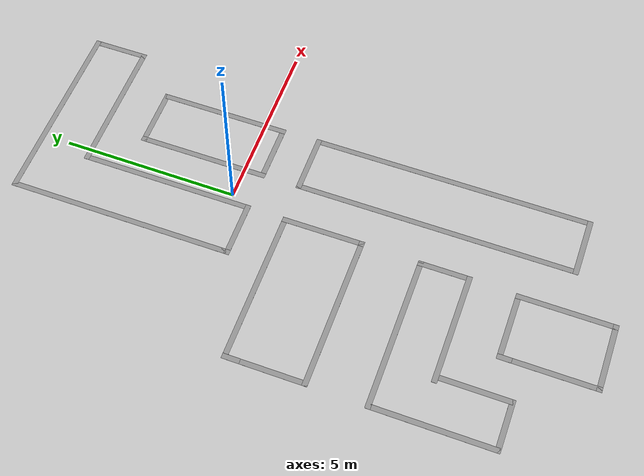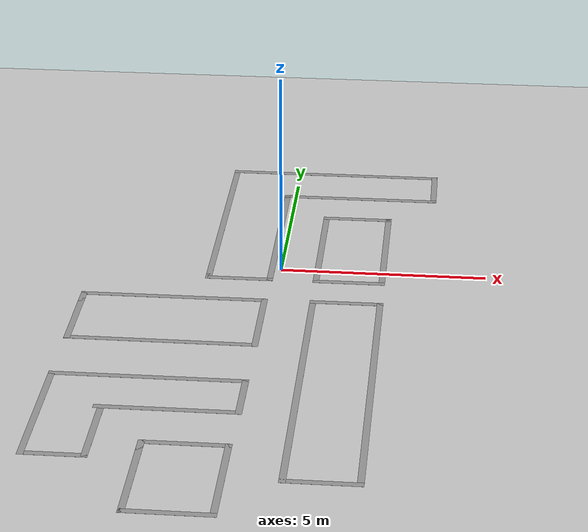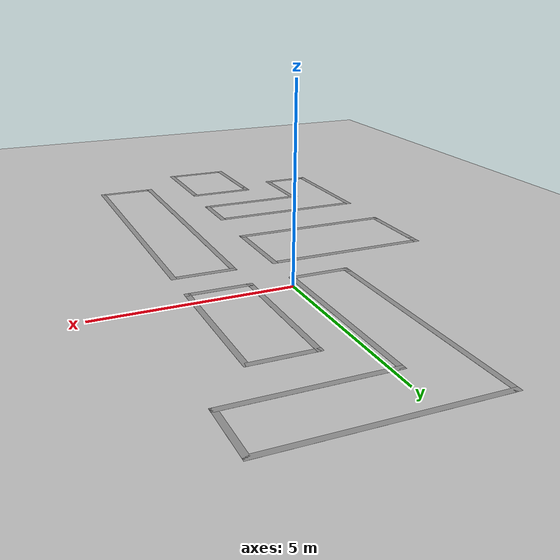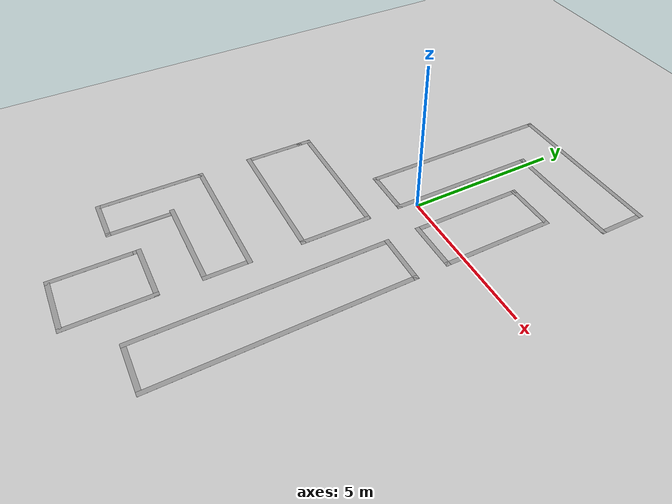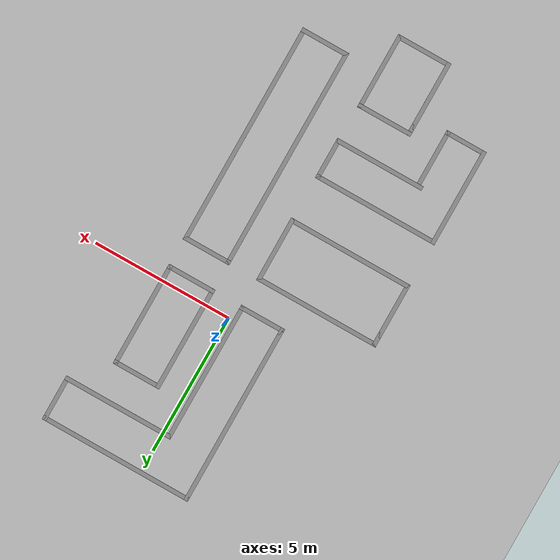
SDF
<sdf version="1.6">
 <world name="default">
  <model name="ground_plane">
   <static>1</static>
   <link name="link">
    <collision name="collision">
     <geometry><plane><normal>0 0 1</normal><size>100 100</size></plane></geometry>
     <surface>
      <contact><collide_bitmask>65535</collide_bitmask></contact>
      <friction><ode><mu>100</mu><mu2>50</mu2></ode></friction>
     </surface>
    </collision>
    <visual name="visual">
     <cast_shadows>0</cast_shadows>
     <geometry><plane><normal>0 0 1</normal><size>100 100</size></plane></geometry>
     <material>
      <script><uri>file://media/materials/scripts/gazebo.material</uri><name>Gazebo/Grey</name></script>
     </material>
    </visual>
   </link>
  </model>
  <model name="Untitled">
   <pose>-0.500001 -2.5 0 0 0 -1.57</pose>
   <link name="Wall_0">
    <collision name="Wall_0_Collision"><geometry><box><size>1.75 0.15 0.001</size></box></geometry></collision>
    <visual name="Wall_0_Visual">
     <geometry><box><size>1.75 0.15 0.001</size></box></geometry>
     <material>
      <script><uri>file://media/materials/scripts/gazebo.material</uri><name>Gazebo/Grey</name></script>
      <ambient>1 1 1 1</ambient>
     </material>
     <meta><layer>0</layer></meta>
    </visual>
    <pose>-1.96894 2.19842 0 0 -0 -1.5708</pose>
   </link>
   <link name="Wall_1">
    <collision name="Wall_1_Collision"><geometry><box><size>3.75 0.15 0.001</size></box></geometry></collision>
    <visual name="Wall_1_Visual">
     <geometry><box><size>3.75 0.15 0.001</size></box></geometry>
     <material>
      <script><uri>file://media/materials/scripts/gazebo.material</uri><name>Gazebo/Grey</name></script>
      <ambient>1 1 1 1</ambient>
     </material>
     <meta><layer>0</layer></meta>
    </visual>
    <pose>-3.76894 1.39842 0 0 -0 3.14159</pose>
   </link>
   <link name="Wall_10">
    <collision name="Wall_10_Collision"><geometry><box><size>1.75 0.15 0.001</size></box></geometry></collision>
    <visual name="Wall_10_Visual">
     <geometry><box><size>1.75 0.15 0.001</size></box></geometry>
     <material>
      <script><uri>file://media/materials/scripts/gazebo.material</uri><name>Gazebo/Grey</name></script>
      <ambient>1 1 1 1</ambient>
     </material>
     <meta><layer>0</layer></meta>
    </visual>
    <pose>6.95706 2.21142 0 0 -0 -1.5708</pose>
   </link>
   <link name="Wall_13">
    <collision name="Wall_13_Collision"><geometry><box><size>5 0.15 0.001</size></box></geometry></collision>
    <visual name="Wall_13_Visual">
     <geometry><box><size>5 0.15 0.001</size></box></geometry>
     <material>
      <script><uri>file://media/materials/scripts/gazebo.material</uri><name>Gazebo/Grey</name></script>
      <ambient>1 1 1 1</ambient>
     </material>
     <meta><layer>0</layer></meta>
    </visual>
    <pose>-4.39494 0.271425 0 0 -0 3.14159</pose>
   </link>
   <link name="Wall_16">
    <collision name="Wall_16_Collision"><geometry><box><size>4 0.15 0.001</size></box></geometry></collision>
    <visual name="Wall_16_Visual">
     <geometry><box><size>4 0.15 0.001</size></box></geometry>
     <material>
      <script><uri>file://media/materials/scripts/gazebo.material</uri><name>Gazebo/Grey</name></script>
      <ambient>1 1 1 1</ambient>
     </material>
     <meta><layer>0</layer></meta>
    </visual>
    <pose>-6.81994 2.19642 0 0 -0 1.5708</pose>
   </link>
   <link name="Wall_17">
    <collision name="Wall_17_Collision"><geometry><box><size>1.635 0.15 0.001</size></box></geometry></collision>
    <visual name="Wall_17_Visual">
     <geometry><box><size>1.635 0.15 0.001</size></box></geometry>
     <material>
      <script><uri>file://media/materials/scripts/gazebo.material</uri><name>Gazebo/Grey</name></script>
      <ambient>1 1 1 1</ambient>
     </material>
     <meta><layer>0</layer></meta>
    </visual>
    <pose>-7.56244 4.11992 0 0 -0 -3.13957</pose>
   </link>
   <link name="Wall_18">
    <collision name="Wall_18_Collision"><geometry><box><size>5.5 0.15 0.001</size></box></geometry></collision>
    <visual name="Wall_18_Visual">
     <geometry><box><size>5.5 0.15 0.001</size></box></geometry>
     <material>
      <script><uri>file://media/materials/scripts/gazebo.material</uri><name>Gazebo/Grey</name></script>
      <ambient>1 1 1 1</ambient>
     </material>
     <meta><layer>0</layer></meta>
    </visual>
    <pose>-8.30944 1.44342 0 0 -0 -1.57248</pose>
   </link>
   <link name="Wall_19">
    <collision name="Wall_19_Collision"><geometry><box><size>6.396 0.15 0.001</size></box></geometry></collision>
    <visual name="Wall_19_Visual">
     <geometry><box><size>6.396 0.15 0.001</size></box></geometry>
     <material>
      <script><uri>file://media/materials/scripts/gazebo.material</uri><name>Gazebo/Grey</name></script>
      <ambient>1 1 1 1</ambient>
     </material>
     <meta><layer>0</layer></meta>
    </visual>
    <pose>-5.19094 -1.23008 0 0 -0 0.00048</pose>
   </link>
   <link name="Wall_2">
    <collision name="Wall_2_Collision"><geometry><box><size>1.75 0.15 0.001</size></box></geometry></collision>
    <visual name="Wall_2_Visual">
     <geometry><box><size>1.75 0.15 0.001</size></box></geometry>
     <material>
      <script><uri>file://media/materials/scripts/gazebo.material</uri><name>Gazebo/Grey</name></script>
      <ambient>1 1 1 1</ambient>
     </material>
     <meta><layer>0</layer></meta>
    </visual>
    <pose>-5.56894 2.19842 0 0 -0 1.5708</pose>
   </link>
   <link name="Wall_20">
    <collision name="Wall_20_Collision"><geometry><box><size>0.25 0.15 0.001</size></box></geometry></collision>
    <visual name="Wall_20_Visual">
     <geometry><box><size>0.25 0.15 0.001</size></box></geometry>
     <material>
      <script><uri>file://media/materials/scripts/gazebo.material</uri><name>Gazebo/Grey</name></script>
      <ambient>1 1 1 1</ambient>
     </material>
     <meta><layer>0</layer></meta>
    </visual>
    <pose>-2.01794 -1.22857 0 0 -0 0</pose>
   </link>
   <link name="Wall_21">
    <collision name="Wall_21_Collision"><geometry><box><size>1.65 0.15 0.001</size></box></geometry></collision>
    <visual name="Wall_21_Visual">
     <geometry><box><size>1.65 0.15 0.001</size></box></geometry>
     <material>
      <script><uri>file://media/materials/scripts/gazebo.material</uri><name>Gazebo/Grey</name></script>
      <ambient>1 1 1 1</ambient>
     </material>
     <meta><layer>0</layer></meta>
    </visual>
    <pose>-1.96894 -0.478575 0 0 -0 1.57213</pose>
   </link>
   <link name="Wall_23">
    <collision name="Wall_23_Collision">
     <geometry><box><size>2.35234 0.15 0.001</size></box></geometry>
    </collision>
    <visual name="Wall_23_Visual">
     <geometry><box><size>2.35234 0.15 0.001</size></box></geometry>
     <material>
      <script><uri>file://media/materials/scripts/gazebo.material</uri><name>Gazebo/Grey</name></script>
      <ambient>1 1 1 1</ambient>
     </material>
     <meta><layer>0</layer></meta>
    </visual>
    <pose>0.233063 0.256924 0 0 -0 0.002271</pose>
   </link>
   <link name="Wall_24">
    <collision name="Wall_24_Collision">
     <geometry><box><size>4.50608 0.15 0.001</size></box></geometry>
    </collision>
    <visual name="Wall_24_Visual">
     <geometry><box><size>4.50608 0.15 0.001</size></box></geometry>
     <material>
      <script><uri>file://media/materials/scripts/gazebo.material</uri><name>Gazebo/Grey</name></script>
      <ambient>1 1 1 1</ambient>
     </material>
     <meta><layer>0</layer></meta>
    </visual>
    <pose>1.32956 -1.91858 0 0 -0 -1.57286</pose>
   </link>
   <link name="Wall_25">
    <collision name="Wall_25_Collision"><geometry><box><size>2 0.15 0.001</size></box></geometry></collision>
    <visual name="Wall_25_Visual">
     <geometry><box><size>2 0.15 0.001</size></box></geometry>
     <material>
      <script><uri>file://media/materials/scripts/gazebo.material</uri><name>Gazebo/Grey</name></script>
      <ambient>1 1 1 1</ambient>
     </material>
     <meta><layer>0</layer></meta>
    </visual>
    <pose>0.400063 -4.09657 0 0 -0 3.14159</pose>
   </link>
   <link name="Wall_28">
    <collision name="Wall_28_Collision"><geometry><box><size>4.5 0.15 0.001</size></box></geometry></collision>
    <visual name="Wall_28_Visual">
     <geometry><box><size>4.5 0.15 0.001</size></box></geometry>
     <material>
      <script><uri>file://media/materials/scripts/gazebo.material</uri><name>Gazebo/Grey</name></script>
      <ambient>1 1 1 1</ambient>
     </material>
     <meta><layer>0</layer></meta>
    </visual>
    <pose>-0.867937 -1.92057 0 0 -0 -1.5708</pose>
   </link>
   <link name="Wall_29">
    <collision name="Wall_29_Collision">
     <geometry><box><size>0.493001 0.15 0.001</size></box></geometry>
    </collision>
    <visual name="Wall_29_Visual">
     <geometry><box><size>0.493001 0.15 0.001</size></box></geometry>
     <material>
      <script><uri>file://media/materials/scripts/gazebo.material</uri><name>Gazebo/Grey</name></script>
      <ambient>1 1 1 1</ambient>
     </material>
     <meta><layer>0</layer></meta>
    </visual>
    <pose>-0.696437 -4.09608 0 0 -0 -0.002915</pose>
   </link>
   <link name="Wall_3">
    <collision name="Wall_3_Collision"><geometry><box><size>3.75 0.15 0.001</size></box></geometry></collision>
    <visual name="Wall_3_Visual">
     <geometry><box><size>3.75 0.15 0.001</size></box></geometry>
     <material>
      <script><uri>file://media/materials/scripts/gazebo.material</uri><name>Gazebo/Grey</name></script>
      <ambient>1 1 1 1</ambient>
     </material>
     <meta><layer>0</layer></meta>
    </visual>
    <pose>-3.76894 2.99842 0 0 -0 0</pose>
   </link>
   <link name="Wall_31">
    <collision name="Wall_31_Collision"><geometry><box><size>4.5 0.15 0.001</size></box></geometry></collision>
    <visual name="Wall_31_Visual">
     <geometry><box><size>4.5 0.15 0.001</size></box></geometry>
     <material>
      <script><uri>file://media/materials/scripts/gazebo.material</uri><name>Gazebo/Grey</name></script>
      <ambient>1 1 1 1</ambient>
     </material>
     <meta><layer>0</layer></meta>
    </visual>
    <pose>3.00606 -1.94657 0 0 -0 -1.5708</pose>
   </link>
   <link name="Wall_32">
    <collision name="Wall_32_Collision"><geometry><box><size>3.5 0.15 0.001</size></box></geometry></collision>
    <visual name="Wall_32_Visual">
     <geometry><box><size>3.5 0.15 0.001</size></box></geometry>
     <material>
      <script><uri>file://media/materials/scripts/gazebo.material</uri><name>Gazebo/Grey</name></script>
      <ambient>1 1 1 1</ambient>
     </material>
     <meta><layer>0</layer></meta>
    </visual>
    <pose>4.68106 -4.12157 0 0 -0 0</pose>
   </link>
   <link name="Wall_33">
    <collision name="Wall_33_Collision"><geometry><box><size>1.5 0.15 0.001</size></box></geometry></collision>
    <visual name="Wall_33_Visual">
     <geometry><box><size>1.5 0.15 0.001</size></box></geometry>
     <material>
      <script><uri>file://media/materials/scripts/gazebo.material</uri><name>Gazebo/Grey</name></script>
      <ambient>1 1 1 1</ambient>
     </material>
     <meta><layer>0</layer></meta>
    </visual>
    <pose>6.35606 -3.44658 0 0 -0 1.5708</pose>
   </link>
   <link name="Wall_34">
    <collision name="Wall_34_Collision"><geometry><box><size>2 0.15 0.001</size></box></geometry></collision>
    <visual name="Wall_34_Visual">
     <geometry><box><size>2 0.15 0.001</size></box></geometry>
     <material>
      <script><uri>file://media/materials/scripts/gazebo.material</uri><name>Gazebo/Grey</name></script>
      <ambient>1 1 1 1</ambient>
     </material>
     <meta><layer>0</layer></meta>
    </visual>
    <pose>5.43106 -2.77158 0 0 -0 3.14159</pose>
   </link>
   <link name="Wall_39">
    <collision name="Wall_39_Collision"><geometry><box><size>1.5 0.15 0.001</size></box></geometry></collision>
    <visual name="Wall_39_Visual">
     <geometry><box><size>1.5 0.15 0.001</size></box></geometry>
     <material>
      <script><uri>file://media/materials/scripts/gazebo.material</uri><name>Gazebo/Grey</name></script>
      <ambient>1 1 1 1</ambient>
     </material>
     <meta><layer>0</layer></meta>
    </visual>
    <pose>3.68106 0.228424 0 0 -0 0</pose>
   </link>
   <link name="Wall_40">
    <collision name="Wall_40_Collision"><geometry><box><size>3.25 0.15 0.001</size></box></geometry></collision>
    <visual name="Wall_40_Visual">
     <geometry><box><size>3.25 0.15 0.001</size></box></geometry>
     <material>
      <script><uri>file://media/materials/scripts/gazebo.material</uri><name>Gazebo/Grey</name></script>
      <ambient>1 1 1 1</ambient>
     </material>
     <meta><layer>0</layer></meta>
    </visual>
    <pose>4.35606 -1.32157 0 0 -0 -1.5708</pose>
   </link>
   <link name="Wall_42">
    <collision name="Wall_42_Collision"><geometry><box><size>2.75 0.15 0.001</size></box></geometry></collision>
    <visual name="Wall_42_Visual">
     <geometry><box><size>2.75 0.15 0.001</size></box></geometry>
     <material>
      <script><uri>file://media/materials/scripts/gazebo.material</uri><name>Gazebo/Grey</name></script>
      <ambient>1 1 1 1</ambient>
     </material>
     <meta><layer>0</layer></meta>
    </visual>
    <pose>7.01406 0.172425 0 0 -0 0</pose>
   </link>
   <link name="Wall_43">
    <collision name="Wall_43_Collision"><geometry><box><size>2 0.15 0.001</size></box></geometry></collision>
    <visual name="Wall_43_Visual">
     <geometry><box><size>2 0.15 0.001</size></box></geometry>
     <material>
      <script><uri>file://media/materials/scripts/gazebo.material</uri><name>Gazebo/Grey</name></script>
      <ambient>1 1 1 1</ambient>
     </material>
     <meta><layer>0</layer></meta>
    </visual>
    <pose>8.31406 -0.752576 0 0 -0 -1.5708</pose>
   </link>
   <link name="Wall_44">
    <collision name="Wall_44_Collision"><geometry><box><size>2.5 0.15 0.001</size></box></geometry></collision>
    <visual name="Wall_44_Visual">
     <geometry><box><size>2.5 0.15 0.001</size></box></geometry>
     <material>
      <script><uri>file://media/materials/scripts/gazebo.material</uri><name>Gazebo/Grey</name></script>
      <ambient>1 1 1 1</ambient>
     </material>
     <meta><layer>0</layer></meta>
    </visual>
    <pose>7.13906 -1.67758 0 0 -0 3.14159</pose>
   </link>
   <link name="Wall_47">
    <collision name="Wall_47_Collision"><geometry><box><size>2 0.15 0.001</size></box></geometry></collision>
    <visual name="Wall_47_Visual">
     <geometry><box><size>2 0.15 0.001</size></box></geometry>
     <material>
      <script><uri>file://media/materials/scripts/gazebo.material</uri><name>Gazebo/Grey</name></script>
      <ambient>1 1 1 1</ambient>
     </material>
     <meta><layer>0</layer></meta>
    </visual>
    <pose>5.71406 -0.752576 0 0 -0 -1.5708</pose>
   </link>
   <link name="Wall_48">
    <collision name="Wall_48_Collision"><geometry><box><size>0.4 0.15 0.001</size></box></geometry></collision>
    <visual name="Wall_48_Visual">
     <geometry><box><size>0.4 0.15 0.001</size></box></geometry>
     <material>
      <script><uri>file://media/materials/scripts/gazebo.material</uri><name>Gazebo/Grey</name></script>
      <ambient>1 1 1 1</ambient>
     </material>
     <meta><layer>0</layer></meta>
    </visual>
    <pose>5.83906 -1.67758 0 0 -0 0</pose>
   </link>
   <link name="Wall_6">
    <collision name="Wall_6_Collision"><geometry><box><size>8 0.15 0.001</size></box></geometry></collision>
    <visual name="Wall_6_Visual">
     <geometry><box><size>8 0.15 0.001</size></box></geometry>
     <material>
      <script><uri>file://media/materials/scripts/gazebo.material</uri><name>Gazebo/Grey</name></script>
      <ambient>1 1 1 1</ambient>
     </material>
     <meta><layer>0</layer></meta>
    </visual>
    <pose>3.03206 1.41142 0 0 -0 0</pose>
   </link>
   <link name="Wall_8">
    <collision name="Wall_8_Collision"><geometry><box><size>1.75 0.15 0.001</size></box></geometry></collision>
    <visual name="Wall_8_Visual">
     <geometry><box><size>1.75 0.15 0.001</size></box></geometry>
     <material>
      <script><uri>file://media/materials/scripts/gazebo.material</uri><name>Gazebo/Grey</name></script>
      <ambient>1 1 1 1</ambient>
     </material>
     <meta><layer>0</layer></meta>
    </visual>
    <pose>-0.892937 2.21142 0 0 -0 1.5708</pose>
   </link>
   <link name="Wall_9">
    <collision name="Wall_9_Collision"><geometry><box><size>8 0.15 0.001</size></box></geometry></collision>
    <visual name="Wall_9_Visual">
     <geometry><box><size>8 0.15 0.001</size></box></geometry>
     <material>
      <script><uri>file://media/materials/scripts/gazebo.material</uri><name>Gazebo/Grey</name></script>
      <ambient>1 1 1 1</ambient>
     </material>
     <meta><layer>0</layer></meta>
    </visual>
    <pose>3.03206 3.01142 0 0 -0 0</pose>
   </link>
   <static>1</static>
  </model>
 </world>
</sdf>
